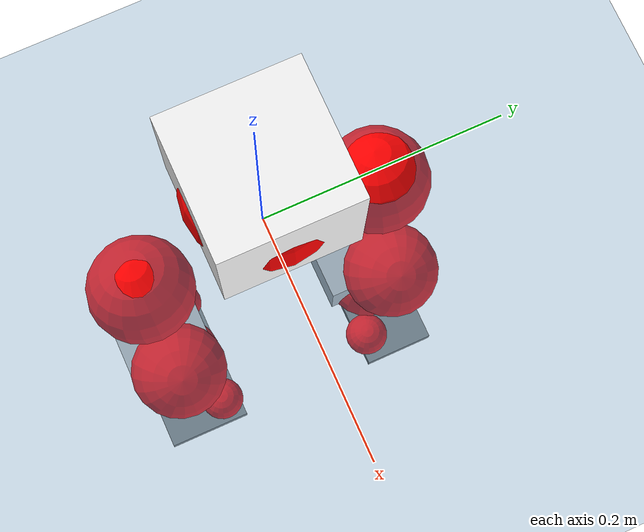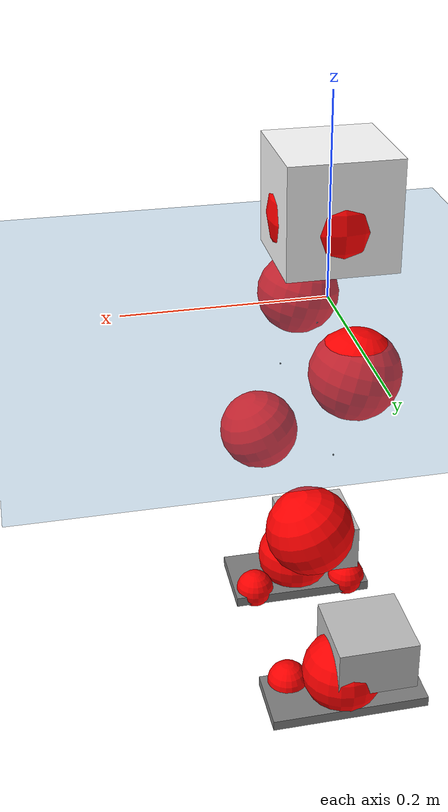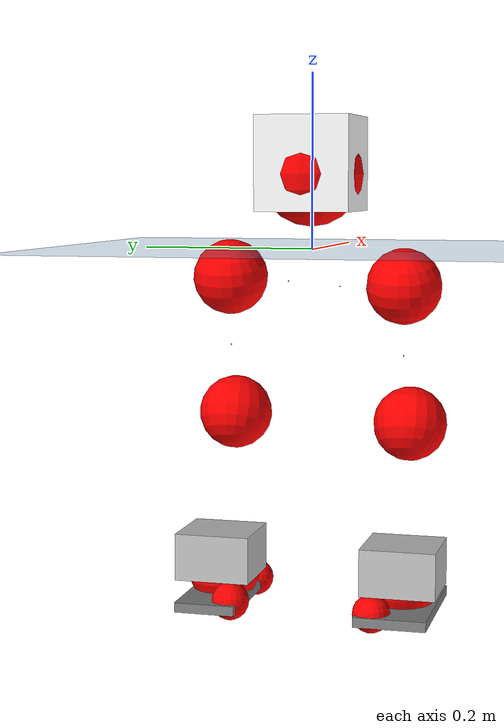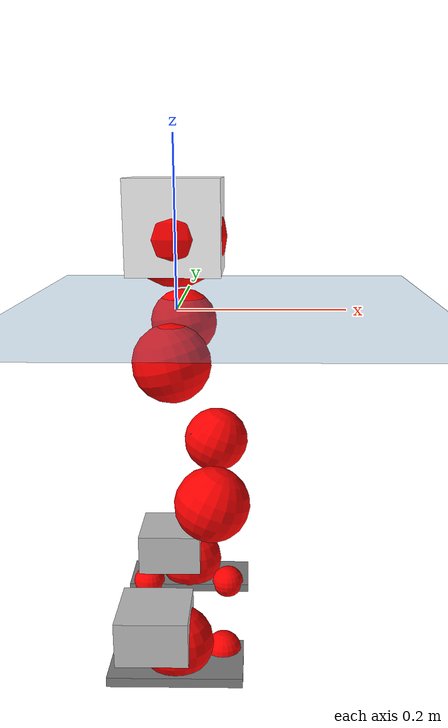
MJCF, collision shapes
<mujoco model="pi_12dof_release_v1">
  <compiler angle="radian" assetdir="assets" balanceinertia="true" inertiafromgeom="false"/>

  <option timestep="0.005" density="1.2" viscosity="2e-05"/>

  <size nkey="1"/>

  <visual>
    <quality shadowsize="8192"/>
    <map shadowclip="0.5"/>
  </visual>

  <default>
    <default class="/">
      <joint armature="0.01" damping="0.01" frictionloss="0.01"/>
      <geom contype="0" conaffinity="0" group="1" solref="-1000 -80"/>
      <site size="0.01 0.005 0.005" group="5"/>
      <general forcelimited="true" biastype="affine" gainprm="20" biasprm="0 -20 -0.5"/>
      <default class="foot">
        <geom size="0.0845 0.036 0.005" type="box" condim="6" group="4" priority="1" friction="0.9 0.2 0.2" solimp="0.015 1 0.005"/>
      </default>
      <default class="reward_collision_sphere">
        <geom group="5" rgba="1 0 0 1"/>
      </default>
    </default>
  </default>

  <asset>
    <texture type="skybox" colorspace="auto" name="//unnamed_texture_0" builtin="gradient" rgb1="0.95 0.95 0.95" rgb2="0.95 0.95 0.95" width="100" height="600"/>
    <texture type="2d" colorspace="auto" name="texplane" builtin="checker" rgb1="0.345 0.575 0.748" rgb2="0.345 0.575 0.748" markrgb="1 1 1" width="512" height="512"/>
    <material name="MatPlane" class="/" texture="texplane" texuniform="true" texrepeat="2 2" specular="0.9"/>
    <mesh name="baselink_1" class="/" file="baselink_1.STL"/>
    <mesh name="r_hip_pitch_link" class="/" file="r_hip_pitch_link.STL"/>
    <mesh name="r_hip_roll_link" class="/" file="r_hip_roll_link.STL"/>
    <mesh name="r_thigh_link" class="/" file="r_thigh_link.STL"/>
    <mesh name="r_calf_link" class="/" file="r_calf_link.STL"/>
    <mesh name="r_ankle_pitch_link" class="/" file="r_ankle_pitch_link.STL"/>
    <mesh name="r_ankle_roll_link" class="/" file="r_ankle_roll_link.STL"/>
    <mesh name="l_hip_pitch_link" class="/" file="l_hip_pitch_link.STL"/>
    <mesh name="l_hip_roll_link" class="/" file="l_hip_roll_link.STL"/>
    <mesh name="l_thigh_link" class="/" file="l_thigh_link.STL"/>
    <mesh name="l_calf_link" class="/" file="l_calf_link.STL"/>
    <mesh name="l_ankle_pitch_link" class="/" file="l_ankle_pitch_link.STL"/>
    <mesh name="l_ankle_roll_link" class="/" file="l_ankle_roll_link.STL"/>
  </asset>

  <worldbody>
    <geom name="floor" class="/" size="100 100 0.125" type="plane" group="0" material="MatPlane"/>
    <light name="toplight_shadow" class="/" pos="0 0 5" dir="0.0990148 0.0990148 -0.990148" type="directional" ambient="0.04 0.04 0.04" diffuse="0.55 0.55 0.55" specular="0.12 0.12 0.12"/>
    <light name="toplight_fill" class="/" pos="0 0 5" dir="0.0990148 0.0990148 -0.990148" type="directional" castshadow="false" ambient="0.04 0.04 0.04" diffuse="0.3 0.3 0.3" specular="0.08 0.08 0.08"/>
    <body name="trunk" pos="0.00077518 0.00133507 0.00133114" quat="1 6.45728e-05 8.52901e-05 -9.99395e-06">
      <inertial pos="0.00460737 0.00189816 0.0486779" quat="0.701115 0.0305956 0.0249682 0.711954" mass="2.72304" diaginertia="0.00354006 0.0228428 0.0104063"/>
      <joint name="//unnamed_joint_0" type="free"/>
      <geom name="//unnamed_geom_1" class="/" type="mesh" density="0" rgba="1 1 1 1" mesh="baselink_1"/>
      <geom name="//unnamed_geom_2" class="/" size="0.0538142 0.0538142 0.0538142" pos="0 0 0.0960342" type="box" rgba="1 1 1 1"/>
      <geom name="//unnamed_geom_3" class="reward_collision_sphere" size="0.0591957" pos="0 0 0.0840299"/>
      <site name="imu" class="/" pos="-0.00527814 0.0038212 0.00660645" size="0.0107628"/>
      <camera name="track" class="/" pos="0 -2.41846 0" quat="0.707107 0.707107 0 0" mode="trackcom"/>
      <camera name="ego_camera" class="/" pos="0.0614396 0 0.216077" quat="-0.5 -0.5 0.5 0.5"/>
      <body name="r_hip_pitch_link" pos="0.000568051 -0.0331982 -0.043228" quat="0.992098 0.00027448 -0.125468 -0.00018824">
        <inertial pos="-0.000309673 -0.0662641 0.00111237" quat="-0.0219954 0.711117 -0.0282082 0.702163" mass="0.470036" diaginertia="4.01011e-05 0.00026499 0.000203975"/>
        <joint name="r_hip_pitch_joint" class="/" pos="0 0 0" axis="0.00485656 -0.99996 -0.00755002" stiffness="0.00180234" range="-1.76399 1.2311" armature="0.0105554" damping="0.01059" frictionloss="0.00940843"/>
        <geom name="//unnamed_geom_4" class="/" type="mesh" density="0" rgba="0.75294 0.75294 0.75294 1" mesh="r_hip_pitch_link"/>
        <geom name="//unnamed_geom_5" class="/" size="0.000538142 0.000538142 0.000538142" type="box" rgba="0.75294 0.75294 0.75294 1"/>
        <body name="r_hip_roll_link" pos="0.00186327 -0.0737647 0.00076613" quat="1 -0.000130126 -0.000262788 7.26307e-05">
          <inertial pos="-0.00194578 0.000800612 -0.0727884" quat="0.707085 -0.0671638 -0.0783852 0.699554" mass="0.485496" diaginertia="0.000126322 0.000724454 0.000312314"/>
          <joint name="r_hip_roll_joint" class="/" pos="0 0 0" axis="-1 -9.68982e-05 2.72047e-05" stiffness="0.00364135" range="-0.112084 0.458213" armature="0.0108324" damping="0.0473896" frictionloss="0.0103107"/>
          <geom name="//unnamed_geom_6" class="/" type="mesh" density="0" rgba="0.75294 0.75294 0.75294 1" mesh="r_hip_roll_link"/>
          <geom name="//unnamed_geom_7" class="/" size="0.000538142 0.000538142 0.000538142" type="box" rgba="0.75294 0.75294 0.75294 1"/>
          <geom name="//unnamed_geom_8" class="reward_collision_sphere" size="0.0430514"/>
          <body name="r_thigh_link" pos="-0.00164004 0.00354654 -0.0830919" quat="1 -0.000101769 5.53346e-05 0.000468053">
            <inertial pos="9.09002e-05 0.0012278 -0.052378" quat="0.738982 0.67372 -0.000297795 0.00273878" mass="0.135875" diaginertia="4.62911e-05 0.000230216 0.00015054"/>
            <joint name="r_thigh_joint" class="/" pos="0 0 0" axis="-0.00184156 0.0018374 -0.999997" range="-0.292046 0.594854" armature="0.00976699" damping="0.00687757" frictionloss="0.010348"/>
            <geom name="//unnamed_geom_9" class="/" type="mesh" density="0" rgba="0.75294 0.75294 0.75294 1" mesh="r_thigh_link"/>
            <geom name="//unnamed_geom_10" class="/" size="0.000538142 0.000538142 0.000538142" type="box" rgba="0.75294 0.75294 0.75294 1"/>
            <body name="r_calf_link" pos="0.00178921 -0.00459231 -0.0851529" quat="0.947686 0.000245961 0.319204 -0.000201567">
              <inertial pos="-0.00262561 0.00133468 -0.081369" quat="0.999974 -0.00170224 -0.00242899 0.00662666" mass="1.06425" diaginertia="0.00127883 0.00981334 0.000432737"/>
              <joint name="r_calf_joint" class="/" pos="0 0 0" axis="0.00215133 -0.999994 -0.00255043" range="-1.75767 0.670101" armature="0.00941133" damping="0.00687518" frictionloss="0.0114704"/>
              <geom name="//unnamed_geom_11" class="/" type="mesh" density="0" rgba="0.75294 0.75294 0.75294 1" mesh="r_calf_link"/>
              <geom name="//unnamed_geom_12" class="/" size="0.000538142 0.000538142 0.000538142" type="box" rgba="0.75294 0.75294 0.75294 1"/>
              <geom name="//unnamed_geom_13" class="reward_collision_sphere" size="0.0430514"/>
              <body name="r_ankle_pitch_link" pos="-0.00366103 -0.00494208 -0.167475" quat="0.980165 -8.0668e-06 -0.198185 -0.000410791">
                <inertial pos="0.00258061 0.00917929 -0.00149989" quat="0.00191382 0.705491 -0.00202223 0.708713" mass="0.212183" diaginertia="0.000112202 0.000561374 0.00028353"/>
                <joint name="r_ankle_pitch_joint" class="/" pos="0 0 0" axis="-0.00730898 -0.999813 0.0179002" stiffness="0.0077403" range="-1.26861 0.427347" armature="0.0110173" damping="0.00826944" frictionloss="0.00959833"/>
                <geom name="//unnamed_geom_14" class="/" type="mesh" density="0" rgba="0.75294 0.75294 0.75294 1" mesh="r_ankle_pitch_link"/>
                <geom name="//unnamed_geom_15" class="/" size="0.0419751 0.0430514 0.0269071" type="box" rgba="0.75294 0.75294 0.75294 1"/>
                <body name="r_ankle_roll_link" pos="0.0663868 0.00637134 0.000294213" quat="0.999999 -0.00124559 -6.60859e-05 -0.000187858">
                  <inertial pos="-0.017204 -0.00091088 -0.017766" quat="0.559308 0.430092 0.433663 0.560475" mass="0.657095" diaginertia="0.000430615 0.00265207 0.000727342"/>
                  <joint name="r_ankle_roll_joint" class="/" pos="0 0 0" axis="-1 0.000405865 0.000327509" stiffness="0.00442128" range="-0.0608425 0.136169" armature="0.0109815" damping="0" frictionloss="0.0101184"/>
                  <geom name="//unnamed_geom_16" class="/" type="mesh" density="0" rgba="0.75294 0.75294 0.75294 1" mesh="r_ankle_roll_link"/>
                  <geom name="//unnamed_geom_17" class="/" type="mesh" rgba="0.75294 0.75294 0.75294 1" mesh="r_ankle_roll_link"/>
                  <geom name="right_foot" class="foot" size="0.0786941 0.0410613 0.00574478" pos="-0.0417789 0 -0.0528188"/>
                  <geom name="//unnamed_geom_19" class="reward_collision_sphere" size="0.0430514" pos="-0.0409597 0 -0.0240085"/>
                  <geom name="//unnamed_geom_20" class="reward_collision_sphere" size="0.0215257" pos="0.0122879 0.0241846 -0.0480171"/>
                  <geom name="//unnamed_geom_21" class="reward_collision_sphere" size="0.0215257" pos="-0.0983034 0.0241846 -0.0480171"/>
                  <site name="right_foot" class="foot" pos="-0.0417789 0 -0.0528188" size="0.0107628"/>
                </body>
              </body>
            </body>
          </body>
        </body>
      </body>
      <body name="l_hip_pitch_link" pos="0.000848108 0.0272028 -0.0380686" quat="0.992221 -0.000709352 -0.124485 0.000910132">
        <inertial pos="-0.000360489 0.0677242 0.000928273" quat="-0.0377611 0.705232 0.0172773 0.707759" mass="0.512432" diaginertia="4.8159e-05 0.000278385 0.000259597"/>
        <joint name="l_hip_pitch_joint" class="/" pos="0 0 0" axis="-0.00202827 0.999994 0.00263997" range="-1.26146 1.76282" armature="0.0104728" damping="0.0160729" frictionloss="0.0106596"/>
        <geom name="//unnamed_geom_22" class="/" type="mesh" density="0" rgba="0.75294 0.75294 0.75294 1" mesh="l_hip_pitch_link"/>
        <geom name="//unnamed_geom_23" class="/" size="0.000538142 0.000538142 0.000538142" type="box" rgba="0.75294 0.75294 0.75294 1"/>
        <body name="l_hip_roll_link" pos="-0.000969402 0.0684985 0.0047104" quat="1 0.000303408 0.000638448 -0.000221787">
          <inertial pos="0.00104963 -0.00132674 -0.0690459" quat="0.697608 -0.0771727 -0.0766784 0.708172" mass="0.464658" diaginertia="0.000122258 0.000754192 0.000323402"/>
          <joint name="l_hip_roll_joint" class="/" pos="0 0 0" axis="-0.999968 -0.00485942 0.00639076" range="-0.424358 0.135657" armature="0.00974317" damping="0.0124036" frictionloss="0.0119141"/>
          <geom name="//unnamed_geom_24" class="/" type="mesh" density="0" rgba="0.75294 0.75294 0.75294 1" mesh="l_hip_roll_link"/>
          <geom name="//unnamed_geom_25" class="/" size="0.000538142 0.000538142 0.000538142" type="box" rgba="0.75294 0.75294 0.75294 1"/>
          <geom name="//unnamed_geom_26" class="reward_collision_sphere" size="0.0430514"/>
          <body name="l_thigh_link" pos="-0.00112644 0.00509824 -0.083195" quat="1 -4.81634e-05 -0.000992732 2.43708e-05">
            <inertial pos="0.000270288 -0.00148025 -0.0602032" quat="0.674157 0.738585 0.00216196 0.000183491" mass="0.141971" diaginertia="4.48538e-05 0.000244361 0.000145275"/>
            <joint name="l_thigh_joint" class="/" pos="0 0 0" axis="0.00136863 -0.000625544 -0.999999" range="-0.563168 0.296053" armature="0.0106866" damping="0" frictionloss="0.0108418"/>
            <geom name="//unnamed_geom_27" class="/" type="mesh" density="0" rgba="0.75294 0.75294 0.75294 1" mesh="l_thigh_link"/>
            <geom name="//unnamed_geom_28" class="/" size="0.000538142 0.000538142 0.000538142" type="box" rgba="0.75294 0.75294 0.75294 1"/>
            <body name="l_calf_link" pos="-0.000175233 0.000807802 -0.0856003" quat="0.947622 0.00110989 0.319391 0.000506141">
              <inertial pos="0.00281382 0.00225839 -0.0836312" quat="0.99993 -0.000123103 0.011713 0.00187667" mass="1.02778" diaginertia="0.00129281 0.00937306 0.000419752"/>
              <joint name="l_calf_joint" class="/" pos="0 0 0" axis="-0.000101889 0.999999 -0.00137781" range="-0.599869 1.61326" armature="0.0120587" damping="0.0201968" frictionloss="0.0119782"/>
              <geom name="//unnamed_geom_29" class="/" type="mesh" density="0" rgba="0.75294 0.75294 0.75294 1" mesh="l_calf_link"/>
              <geom name="//unnamed_geom_30" class="/" size="0.000538142 0.000538142 0.000538142" type="box" rgba="0.75294 0.75294 0.75294 1"/>
              <geom name="//unnamed_geom_31" class="reward_collision_sphere" size="0.0430514"/>
              <body name="l_ankle_pitch_link" pos="0.0013212 -0.000283941 -0.167633" quat="0.980131 0.000529681 -0.198346 0.00141098">
                <inertial pos="0.00407841 0.00204798 0.000685464" quat="0.00259059 0.712695 -0.00603674 0.701443" mass="0.219052" diaginertia="0.000114546 0.000569543 0.000296385"/>
                <joint name="l_ankle_pitch_joint" class="/" pos="0 0 0" axis="-0.00476841 0.999984 -0.00295146" range="-0.475008 1.30643" armature="0.0115779" damping="0.0203701" frictionloss="0.0107108"/>
                <geom name="//unnamed_geom_32" class="/" type="mesh" density="0" rgba="0.75294 0.75294 0.75294 1" mesh="l_ankle_pitch_link"/>
                <geom name="//unnamed_geom_33" class="/" size="0.0419751 0.0430514 0.0269071" type="box" rgba="0.75294 0.75294 0.75294 1"/>
                <body name="l_ankle_roll_link" pos="0.0673197 0.00436038 -0.00176413" quat="1 0.00028289 0.000425103 -0.00052642">
                  <inertial pos="-0.0249558 -0.000339608 -0.0199057" quat="0.566488 0.429186 0.426214 0.559672" mass="0.634351" diaginertia="0.000396562 0.00256153 0.000721251"/>
                  <joint name="l_ankle_roll_joint" class="/" pos="0 0 0" axis="-0.999711 -0.0013913 0.0239939" range="-0.246181 0.173926" armature="0.00892615" damping="0" frictionloss="0.0120369"/>
                  <geom name="//unnamed_geom_34" class="/" type="mesh" density="0" rgba="0.75294 0.75294 0.75294 1" mesh="l_ankle_roll_link"/>
                  <geom name="//unnamed_geom_35" class="/" type="mesh" rgba="0.75294 0.75294 0.75294 1" mesh="l_ankle_roll_link"/>
                  <geom name="left_foot" class="foot" size="0.082653 0.03477 0.00554298" pos="-0.0417789 0 -0.0528188"/>
                  <geom name="//unnamed_geom_37" class="reward_collision_sphere" size="0.0430514" pos="-0.0409597 0 -0.0240085"/>
                  <geom name="//unnamed_geom_38" class="reward_collision_sphere" size="0.0215257" pos="0.0122879 -0.0241846 -0.0480171"/>
                  <geom name="//unnamed_geom_39" class="reward_collision_sphere" size="0.0215257" pos="-0.0983034 -0.0241846 -0.0480171"/>
                  <site name="left_foot" class="foot" pos="-0.0417789 0 -0.0528188" size="0.0107628"/>
                </body>
              </body>
            </body>
          </body>
        </body>
      </body>
    </body>
  </worldbody>

  <contact>
    <pair class="/" geom1="floor" geom2="right_foot" name="//unnamed_contact_1"/>
    <pair class="/" geom1="floor" geom2="left_foot" name="//unnamed_contact_0"/>
  </contact>

  <actuator>
    <general name="r_hip_pitch_joint" class="/" joint="r_hip_pitch_joint" forcerange="-20.5459 20.5459" gainprm="21.2582" biasprm="0 -21.2582 -0.515607"/>
    <general name="r_hip_roll_joint" class="/" joint="r_hip_roll_joint" forcerange="-22.518 22.518" gainprm="21.2582" biasprm="0 -21.2582 -0.515607"/>
    <general name="r_thigh_joint" class="/" joint="r_thigh_joint" forcerange="-22.4218 22.4218" gainprm="21.2582" biasprm="0 -21.2582 -0.515607"/>
    <general name="r_calf_joint" class="/" joint="r_calf_joint" forcerange="-24.9504 24.9504" gainprm="21.2582" biasprm="0 -21.2582 -0.515607"/>
    <general name="r_ankle_pitch_joint" class="/" joint="r_ankle_pitch_joint" forcerange="-19.4708 19.4708" gainprm="21.2582" biasprm="0 -21.2582 -0.515607"/>
    <general name="r_ankle_roll_joint" class="/" joint="r_ankle_roll_joint" forcerange="-19.4103 19.4103" gainprm="21.2582" biasprm="0 -21.2582 -0.515607"/>
    <general name="l_hip_pitch_joint" class="/" joint="l_hip_pitch_joint" forcerange="-18.143 18.143" gainprm="21.2582" biasprm="0 -21.2582 -0.515607"/>
    <general name="l_hip_roll_joint" class="/" joint="l_hip_roll_joint" forcerange="-22.8172 22.8172" gainprm="21.2582" biasprm="0 -21.2582 -0.515607"/>
    <general name="l_thigh_joint" class="/" joint="l_thigh_joint" forcerange="-20.5025 20.5025" gainprm="21.2582" biasprm="0 -21.2582 -0.515607"/>
    <general name="l_calf_joint" class="/" joint="l_calf_joint" forcerange="-19.4381 19.4381" gainprm="21.2582" biasprm="0 -21.2582 -0.515607"/>
    <general name="l_ankle_pitch_joint" class="/" joint="l_ankle_pitch_joint" forcerange="-19.4182 19.4182" gainprm="21.2582" biasprm="0 -21.2582 -0.515607"/>
    <general name="l_ankle_roll_joint" class="/" joint="l_ankle_roll_joint" forcerange="-22.5261 22.5261" gainprm="21.2582" biasprm="0 -21.2582 -0.515607"/>
  </actuator>

  <sensor>
    <gyro site="imu" name="imu_angular_velocity"/>
    <velocimeter site="imu" name="imu_linear_velocity"/>
    <framelinvel objtype="site" objname="left_foot" name="left_foot_global_linear_velocity"/>
    <framelinvel objtype="site" objname="right_foot" name="right_foot_global_linear_velocity"/>
  </sensor>

  <keyframe>
    <key name="home" qpos="0 0 0.291 1 0 0 0 0.4 0 0 -0.8 0.4 0 -0.4 0 0 0.8 -0.4 0"/>
  </keyframe>
</mujoco>
